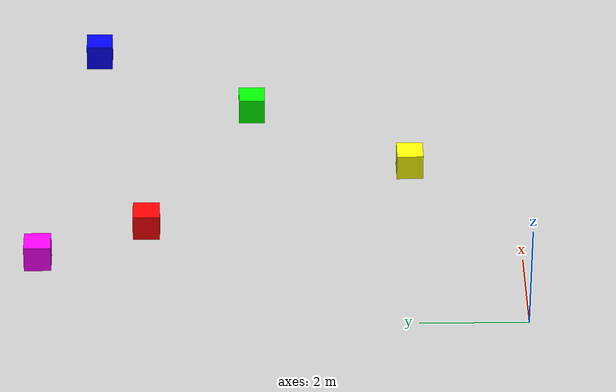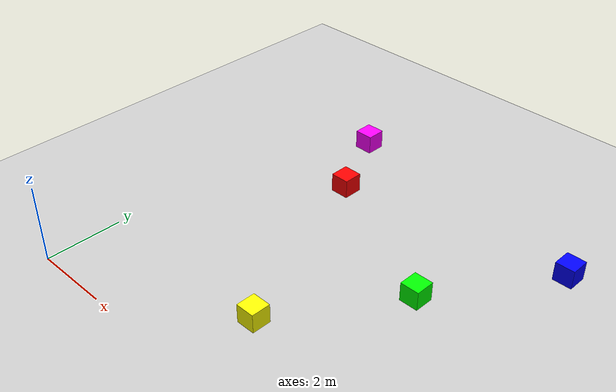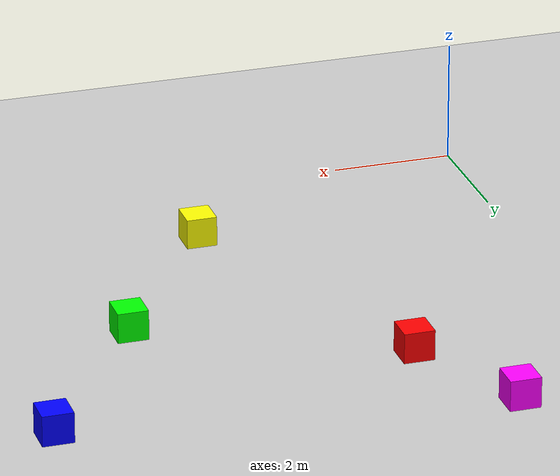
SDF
<?xml version="1.0" ?>
<sdf version="1.6">
  <world name="my_custom_world">

    <!-- Include a Ground Plane -->
    <include>
      <uri>model://ground_plane</uri>
    </include>

    <!-- Include a Sun -->
    <include>
      <uri>model://sun</uri>
    </include>

    <!-- Obstacle 1 -->
    <model name="box_obstacle_1">
      <static>true</static>
      <link name="link">
        <collision name="collision">
          <geometry>
            <box>
              <size>0.5 0.5 0.5</size>
            </box>
          </geometry>
        </collision>
        <visual name="visual">
          <geometry>
            <box>
              <size>0.5 0.5 0.5</size>
            </box>
          </geometry>
          <material>
            <ambient>1 0 0 1</ambient> <!-- Color: red -->
          </material>
        </visual>
        <pose>3 7 0.25 0 0 0</pose> <!-- Position: x=3, y=7 -->
      </link>
    </model>

    <!-- Obstacle 2 -->
    <model name="box_obstacle_2">
      <static>true</static>
      <link name="link">
        <collision name="collision">
          <geometry>
            <box>
              <size>0.5 0.5 0.5</size>
            </box>
          </geometry>
        </collision>
        <visual name="visual">
          <geometry>
            <box>
              <size>0.5 0.5 0.5</size>
            </box>
          </geometry>
          <material>
            <ambient>0 1 0 1</ambient> <!-- Color: green -->
          </material>
        </visual>
        <pose>7 5 0.25 0 0 0</pose> <!-- Position: x=7, y=5 -->
      </link>
    </model>

    <!-- Obstacle 3 -->
    <model name="box_obstacle_3">
      <static>true</static>
      <link name="link">
        <collision name="collision">
          <geometry>
            <box>
              <size>0.5 0.5 0.5</size>
            </box>
          </geometry>
        </collision>
        <visual name="visual">
          <geometry>
            <box>
              <size>0.5 0.5 0.5</size>
            </box>
          </geometry>
          <material>
            <ambient>0 0 1 1</ambient> <!-- Color: blue -->
          </material>
        </visual>
        <pose>9 8 0.25 0 0 0</pose> <!-- Position: x=9, y=8 -->
      </link>
    </model>

    <!-- Obstacle 4 -->
    <model name="box_obstacle_4">
      <static>true</static>
      <link name="link">
        <collision name="collision">
          <geometry>
            <box>
              <size>0.5 0.5 0.5</size>
            </box>
          </geometry>
        </collision>
        <visual name="visual">
          <geometry>
            <box>
              <size>0.5 0.5 0.5</size>
            </box>
          </geometry>
          <material>
            <ambient>1 1 0 1</ambient> <!-- Color: yellow -->
          </material>
        </visual>
        <pose>5 2 0.25 0 0 0</pose> <!-- Position: x=5, y=2 -->
      </link>
    </model>

    <!-- Obstacle 5 -->
    <model name="box_obstacle_5">
      <static>true</static>
      <link name="link">
        <collision name="collision">
          <geometry>
            <box>
              <size>0.5 0.5 0.5</size>
            </box>
          </geometry>
        </collision>
        <visual name="visual">
          <geometry>
            <box>
              <size>0.5 0.5 0.5</size>
            </box>
          </geometry>
          <material>
            <ambient>1 0 1 1</ambient> <!-- Color: magenta -->
          </material>
        </visual>
        <pose>2 9 0.25 0 0 0</pose> <!-- Position: x=2, y=9 -->
      </link>
    </model>

  </world>
</sdf>
